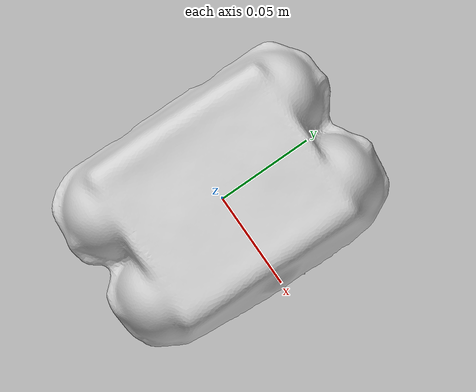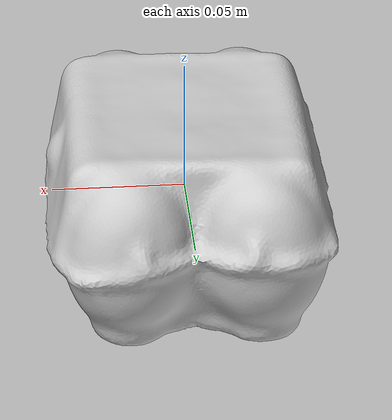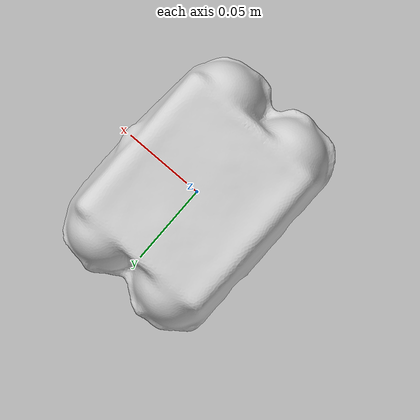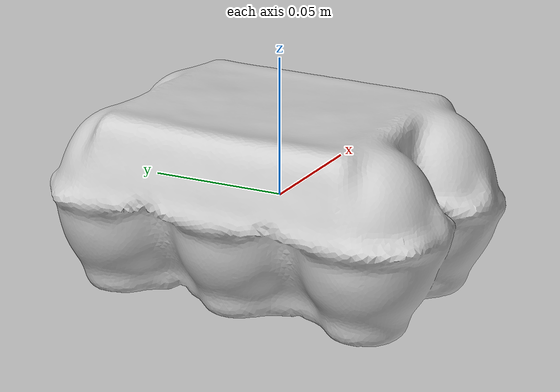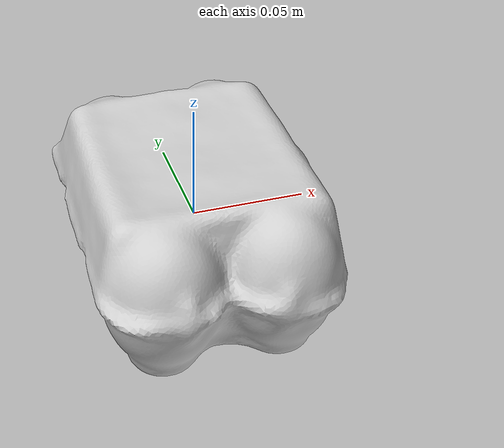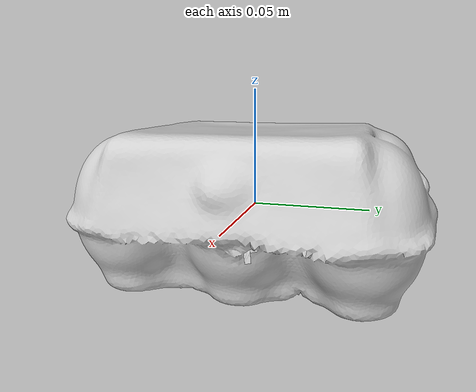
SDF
<?xml version="1.0" ?>
<sdf version="1.5">
  <model name="eggbox">
	<static>false</static>
    <pose>0 0 0 0 0 0</pose>
    <link name="link">
      <inertial>
        <mass>0.1</mass>
      </inertial>
      <collision name="collision">
        <geometry>
          <mesh>
            <uri>model://Eggbox/meshes/eggbox.dae</uri>
            <scale>1 1 1</scale>
          </mesh>
        </geometry>
      </collision>
      <visual name="visual">
        <geometry>
          <mesh>
            <uri>model://Eggbox/meshes/eggbox.dae</uri>
          </mesh>
        </geometry>
      </visual>
    </link>
  </model>
</sdf>
